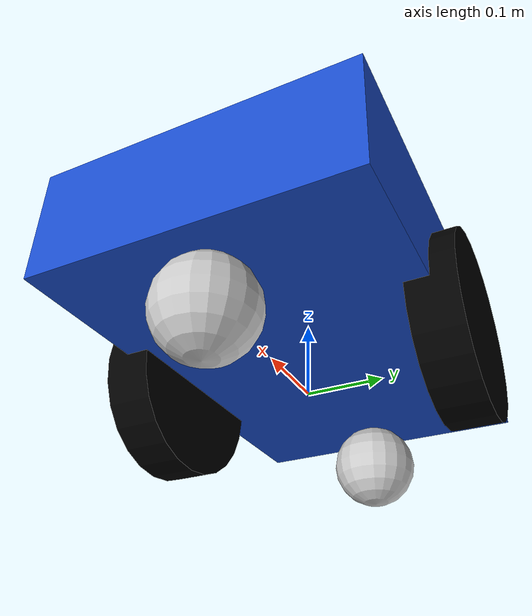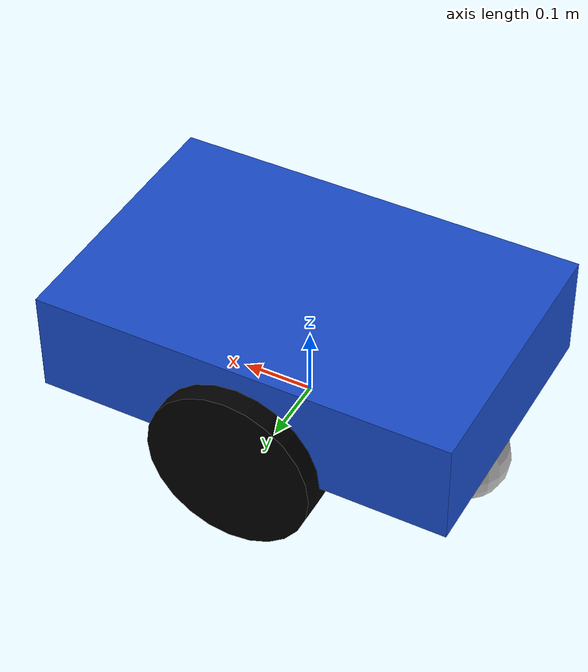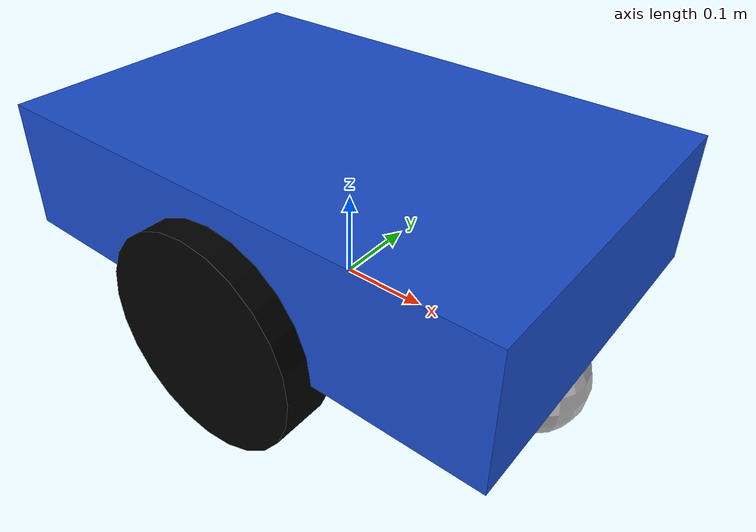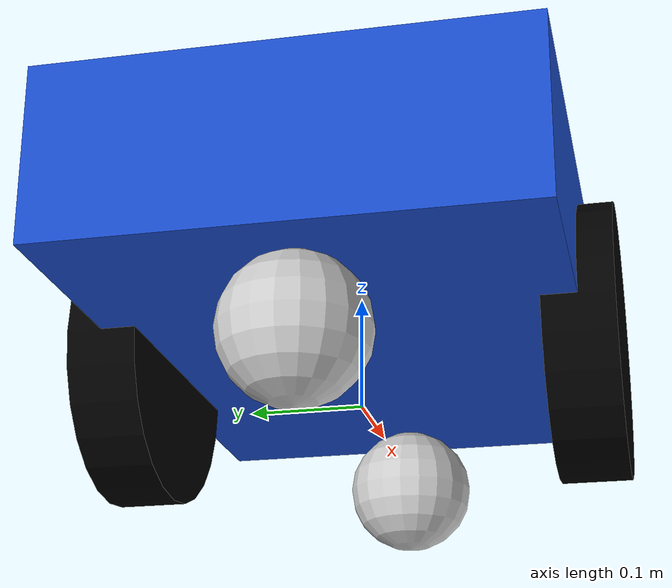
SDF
<?xml version="1.0"?>
<sdf version="1.9">
  <model name="sirius_robot">
    <pose>0 0 0.12 0 0 0</pose>

    <!-- Base Link -->
    <link name="base_link">
      <pose>0 0 0 0 0 0</pose>
      <inertial>
        <mass>2.0</mass>
        <inertia>
          <ixx>0.05</ixx>
          <ixy>0</ixy>
          <ixz>0</ixz>
          <iyy>0.08</iyy>
          <iyz>0</iyz>
          <izz>0.08</izz>
        </inertia>
      </inertial>
      <visual name="base_visual">
        <geometry>
          <box>
            <size>0.6 0.4 0.15</size>
          </box>
        </geometry>
        <material>
          <ambient>0.1 0.3 0.8 1</ambient>
          <diffuse>0.1 0.3 0.8 1</diffuse>
          <specular>0.1 0.1 0.1 1</specular>
        </material>
      </visual>
      <collision name="base_collision">
        <geometry>
          <box>
            <size>0.6 0.4 0.15</size>
          </box>
        </geometry>
      </collision>
    </link>

    <!-- Left Wheel -->
    <link name="left_wheel">
      <pose>0 0.2 -0.075 -1.5708 0 0</pose>
      <inertial>
        <mass>0.8</mass>
        <inertia>
          <ixx>0.0032</ixx>
          <ixy>0</ixy>
          <ixz>0</ixz>
          <iyy>0.0032</iyy>
          <iyz>0</iyz>
          <izz>0.0058</izz>
        </inertia>
      </inertial>
      <visual name="left_wheel_visual">
        <geometry>
          <cylinder>
            <radius>0.12</radius>
            <length>0.06</length>
          </cylinder>
        </geometry>
        <material>
          <ambient>0 0 0 1</ambient>
          <diffuse>0 0 0 1</diffuse>
          <specular>0.1 0.1 0.1 1</specular>
        </material>
      </visual>
      <collision name="left_wheel_collision">
        <geometry>
          <cylinder>
            <radius>0.12</radius>
            <length>0.06</length>
          </cylinder>
        </geometry>
      </collision>
    </link>

    <!-- Right Wheel -->
    <link name="right_wheel">
      <pose>0 -0.2 -0.075 -1.5708 0 0</pose>
      <inertial>
        <mass>0.8</mass>
        <inertia>
          <ixx>0.0032</ixx>
          <ixy>0</ixy>
          <ixz>0</ixz>
          <iyy>0.0032</iyy>
          <iyz>0</iyz>
          <izz>0.0058</izz>
        </inertia>
      </inertial>
      <visual name="right_wheel_visual">
        <geometry>
          <cylinder>
            <radius>0.12</radius>
            <length>0.06</length>
          </cylinder>
        </geometry>
        <material>
          <ambient>0 0 0 1</ambient>
          <diffuse>0 0 0 1</diffuse>
          <specular>0.1 0.1 0.1 1</specular>
        </material>
      </visual>
      <collision name="right_wheel_collision">
        <geometry>
          <cylinder>
            <radius>0.12</radius>
            <length>0.06</length>
          </cylinder>
        </geometry>
      </collision>
    </link>

    <!-- Front Caster -->
    <link name="front_caster">
      <pose>0.24 0 -0.135 0 0 0</pose>
      <inertial>
        <mass>0.1</mass>
        <inertia>
          <ixx>0.000144</ixx>
          <ixy>0</ixy>
          <ixz>0</ixz>
          <iyy>0.000144</iyy>
          <iyz>0</iyz>
          <izz>0.000144</izz>
        </inertia>
      </inertial>
      <visual name="front_caster_visual">
        <geometry>
          <sphere>
            <radius>0.06</radius>
          </sphere>
        </geometry>
        <material>
          <ambient>0.8 0.8 0.8 1</ambient>
          <diffuse>0.8 0.8 0.8 1</diffuse>
          <specular>0.1 0.1 0.1 1</specular>
        </material>
      </visual>
      <collision name="front_caster_collision">
        <geometry>
          <sphere>
            <radius>0.06</radius>
          </sphere>
        </geometry>
      </collision>
    </link>

    <!-- Rear Caster -->
    <link name="rear_caster">
      <pose>-0.24 0 -0.135 0 0 0</pose>
      <inertial>
        <mass>0.1</mass>
        <inertia>
          <ixx>0.000144</ixx>
          <ixy>0</ixy>
          <ixz>0</ixz>
          <iyy>0.000144</iyy>
          <iyz>0</iyz>
          <izz>0.000144</izz>
        </inertia>
      </inertial>
      <visual name="rear_caster_visual">
        <geometry>
          <sphere>
            <radius>0.06</radius>
          </sphere>
        </geometry>
        <material>
          <ambient>0.8 0.8 0.8 1</ambient>
          <diffuse>0.8 0.8 0.8 1</diffuse>
          <specular>0.1 0.1 0.1 1</specular>
        </material>
      </visual>
      <collision name="rear_caster_collision">
        <geometry>
          <sphere>
            <radius>0.06</radius>
          </sphere>
        </geometry>
      </collision>
    </link>

    <!-- Joints -->
    <joint name="left_wheel_joint" type="revolute">
      <parent>base_link</parent>
      <child>left_wheel</child>
      <axis>
        <xyz>0 1 0</xyz>
      </axis>
    </joint>

    <joint name="right_wheel_joint" type="revolute">
      <parent>base_link</parent>
      <child>right_wheel</child>
      <axis>
        <xyz>0 1 0</xyz>
      </axis>
    </joint>

    <joint name="front_caster_joint" type="fixed">
      <parent>base_link</parent>
      <child>front_caster</child>
    </joint>

    <joint name="rear_caster_joint" type="fixed">
      <parent>base_link</parent>
      <child>rear_caster</child>
    </joint>

  </model>
</sdf>
